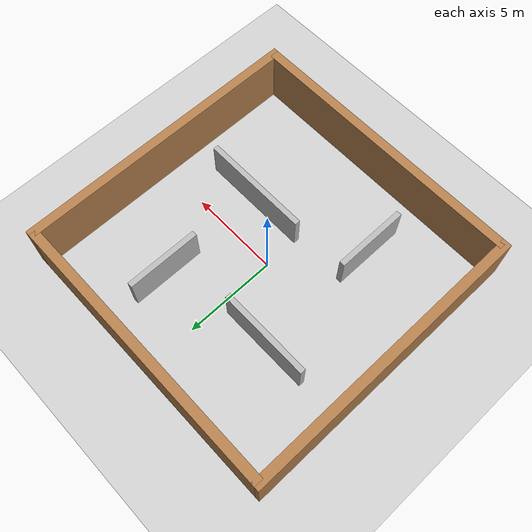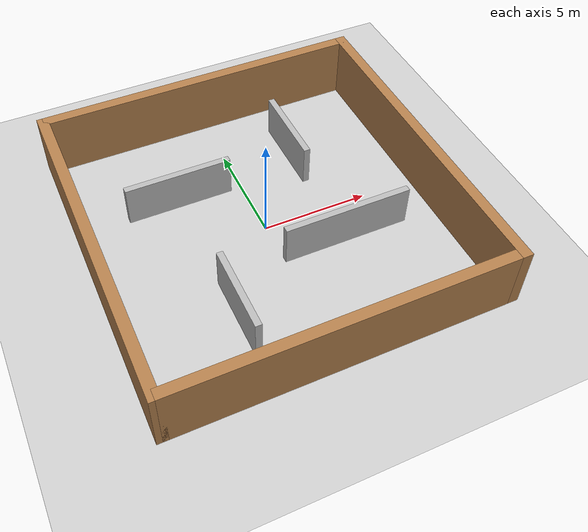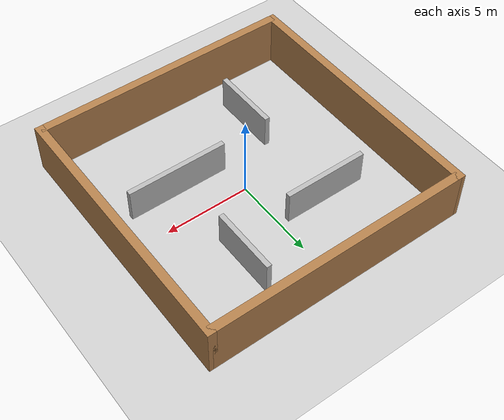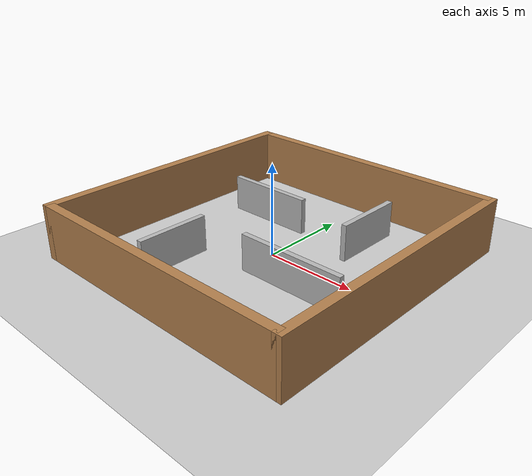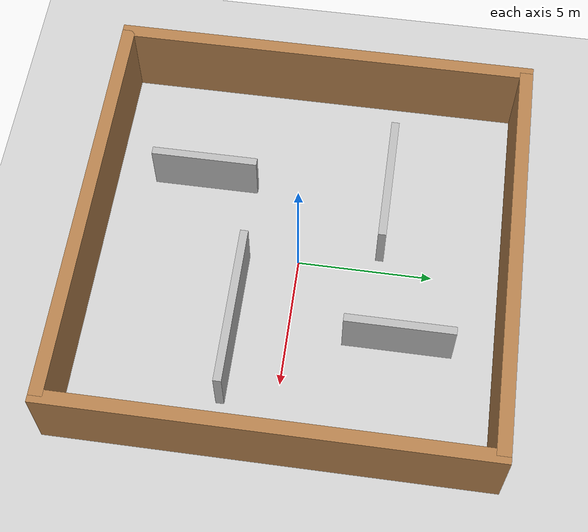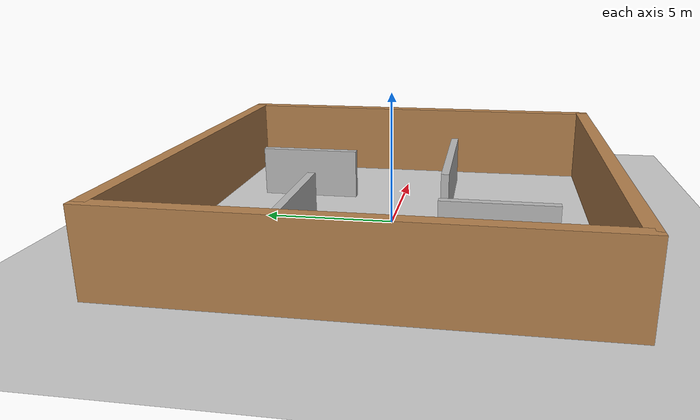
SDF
<sdf version='1.7'>
  <world name='simple_maze'>

    <!-- Lighting -->
    <light name='sun' type='directional'>
      <cast_shadows>1</cast_shadows>
      <pose>0 0 10 0 -0 0</pose>
      <diffuse>0.8 0.8 0.8 1</diffuse>
      <specular>0.2 0.2 0.2 1</specular>
      <attenuation>
        <range>1000</range>
        <constant>0.9</constant>
        <linear>0.01</linear>
        <quadratic>0.001</quadratic>
      </attenuation>
      <direction>-0.5 0.1 -0.9</direction>
    </light>

    <!-- Ground Plane -->
    <model name='ground_plane'>
      <static>1</static>
      <link name='link'>
        <collision name='collision'>
          <geometry>
            <plane>
              <normal>0 0 1</normal>
              <size>20 20</size>
            </plane>
          </geometry>
          <surface>
            <friction>
              <ode>
                <mu>100</mu>
                <mu2>50</mu2>
              </ode>
            </friction>
          </surface>
        </collision>
        <visual name='visual'>
          <cast_shadows>0</cast_shadows>
          <geometry>
            <plane>
              <normal>0 0 1</normal>
              <size>20 20</size>
            </plane>
          </geometry>
          <material>
            <script>
              <uri>file://media/materials/scripts/gazebo.material</uri>
              <n>Gazebo/DarkGrey</n>
            </script>
          </material>
        </visual>
      </link>
    </model>

    <!-- Physics -->
    <physics type='ode'>
      <max_step_size>0.001</max_step_size>
      <real_time_factor>1</real_time_factor>
      <real_time_update_rate>1000</real_time_update_rate>
    </physics>

    <!-- Maze Structure -->
    <model name='simple_maze'>
      <pose>0 0 0 0 0 0</pose>
      <static>1</static>

      <!-- Boundary Walls (15x15m interior) -->
      <link name='North_Wall'>
        <pose>0 7.75 1.5 0 0 0</pose>
        <collision name='col'><geometry><box><size>15.5 0.5 3</size></box></geometry></collision>
        <visual name='vis'><geometry><box><size>15.5 0.5 3</size></box></geometry>
        <material><script><name>Gazebo/Wood</name></script></material></visual>
      </link>
      <link name='South_Wall'>
        <pose>0 -7.75 1.5 0 0 0</pose>
        <collision name='col'><geometry><box><size>15.5 0.5 3</size></box></geometry></collision>
        <visual name='vis'><geometry><box><size>15.5 0.5 3</size></box></geometry>
        <material><script><name>Gazebo/Wood</name></script></material></visual>
      </link>
      <link name='East_Wall'>
        <pose>7.75 0 1.5 0 0 0</pose>
        <collision name='col'><geometry><box><size>0.5 16 3</size></box></geometry></collision>
        <visual name='vis'><geometry><box><size>0.5 16 3</size></box></geometry>
        <material><script><name>Gazebo/Wood</name></script></material></visual>
      </link>
      <link name='West_Wall'>
        <pose>-7.75 0 1.5 0 0 0</pose>
        <collision name='col'><geometry><box><size>0.5 16 3</size></box></geometry></collision>
        <visual name='vis'><geometry><box><size>0.5 16 3</size></box></geometry>
        <material><script><name>Gazebo/Wood</name></script></material></visual>
      </link>

      <!-- Interior Maze Walls (simple layout with wide passages) -->

      <!-- Horizontal wall from west, with gap on right -->
      <link name='Maze_Wall_1'>
        <pose>-3 3 1 0 0 0</pose>
        <collision name='col'><geometry><box><size>5 0.3 2</size></box></geometry></collision>
        <visual name='vis'><geometry><box><size>5 0.3 2</size></box></geometry>
        <material><script><n>Gazebo/Bricks</n></script></material></visual>
      </link>

      <!-- Vertical wall from north, with gap at bottom -->
      <link name='Maze_Wall_2'>
        <pose>3 4 1 0 0 0</pose>
        <collision name='col'><geometry><box><size>0.3 4 2</size></box></geometry></collision>
        <visual name='vis'><geometry><box><size>0.3 4 2</size></box></geometry>
        <material><script><n>Gazebo/Bricks</n></script></material></visual>
      </link>

      <!-- Horizontal wall from east, with gap on left -->
      <link name='Maze_Wall_3'>
        <pose>3 -2 1 0 0 0</pose>
        <collision name='col'><geometry><box><size>6 0.3 2</size></box></geometry></collision>
        <visual name='vis'><geometry><box><size>6 0.3 2</size></box></geometry>
        <material><script><n>Gazebo/Bricks</n></script></material></visual>
      </link>

      <!-- Vertical wall from south, with gap at top -->
      <link name='Maze_Wall_4'>
        <pose>-3 -4 1 0 0 0</pose>
        <collision name='col'><geometry><box><size>0.3 4 2</size></box></geometry></collision>
        <visual name='vis'><geometry><box><size>0.3 4 2</size></box></geometry>
        <material><script><n>Gazebo/Bricks</n></script></material></visual>
      </link>

      <!-- Small center blocker to create routing choice -->

    </model>

  </world>
</sdf>
